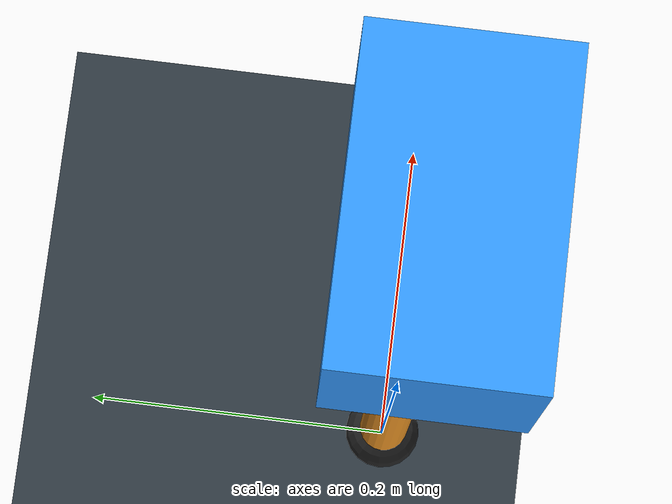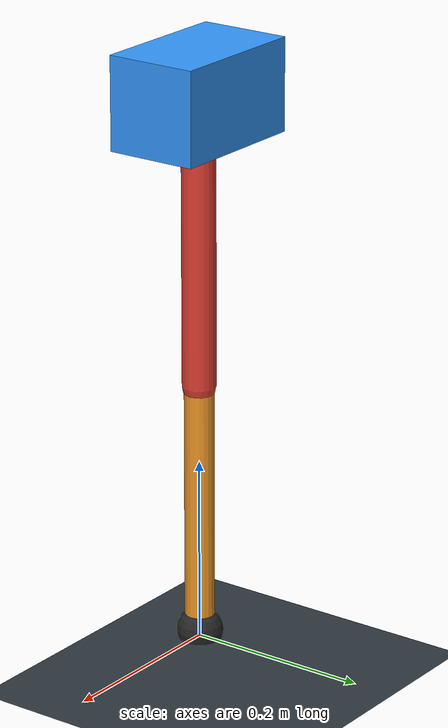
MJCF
<mujoco model="single_axis_two_bar">
  <compiler angle="radian" inertiafromgeom="true"/>
  <option timestep="0.001" integrator="implicitfast" gravity="0 0 -9.81"/>
  <default>
    <joint damping="0.08"/>
    <geom friction="1.2 0.01 0.0001" condim="3"/>
  </default>
  <worldbody>
    <geom name="floor" type="plane" size="5 5 0.1" rgba="0.18 0.22 0.25 1"/>
    <body name="carriage" pos="0 0 0.6005504670559695">
      <joint name="pole_slide" type="slide" axis="0 0 1"/>
      <geom name="payload" type="box" size="0.08 0.05 0.05" mass="2.820467543691286" rgba="0.2 0.6 1 1"/>
      <body name="thigh" pos="0 0 0">
        <joint name="hip" type="hinge" axis="0 1 0"/>
        <geom name="thigh_link" type="capsule" fromto="0 0 0 0 0 -0.31513996182514836" size="0.018" mass="0.2245413870076125" rgba="0.9 0.25 0.2 1"/>
        <body name="shank" pos="0 0 -0.31513996182514836">
          <joint name="knee" type="hinge" axis="0 1 0"/>
          <geom name="shank_link" type="capsule" fromto="0 0 0 0 0 -0.27821103513976864" size="0.016" mass="0.19822903877156636" rgba="0.95 0.6 0.15 1"/>
          <geom name="foot" type="sphere" pos="0 0 -0.27821103513976864" size="0.025" mass="0.03" rgba="0.15 0.15 0.15 1"/>
          <site name="toe" pos="0 0 -0.27821103513976864" size="0.008"/>
        </body>
      </body>
    </body>
  </worldbody>
  <actuator>
    <motor name="hip_motor" joint="hip" ctrlrange="-38.35540956674827 38.35540956674827"/>
    <motor name="knee_motor" joint="knee" ctrlrange="-38.50686993278545 38.50686993278545"/>
  </actuator>
</mujoco>
